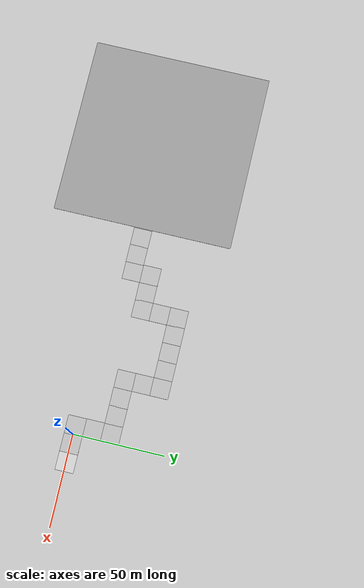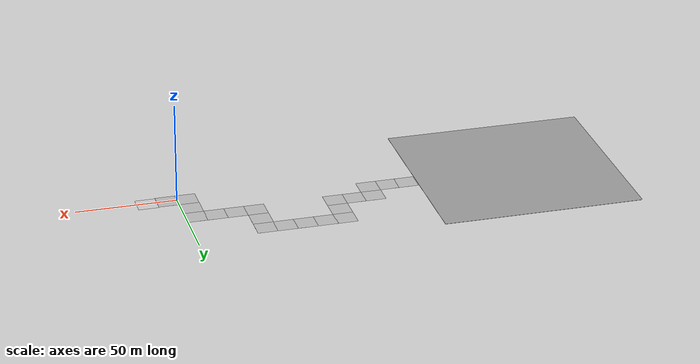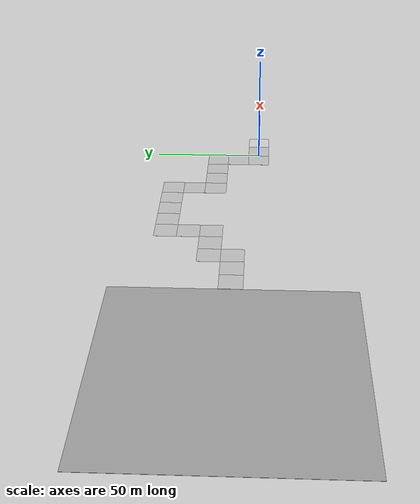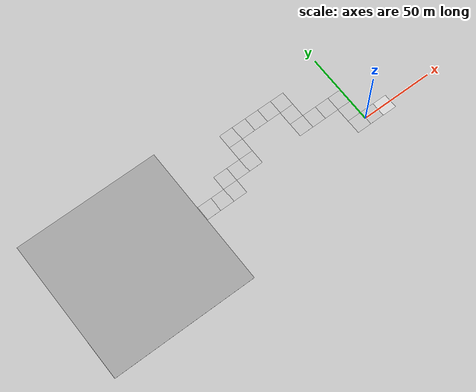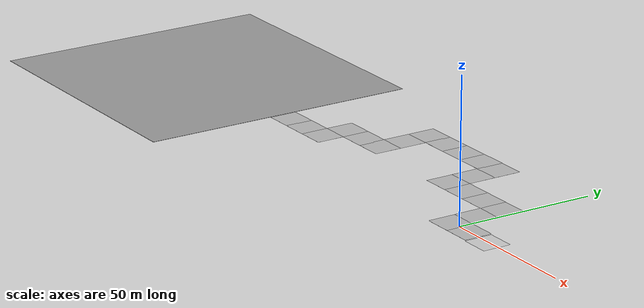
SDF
<sdf version="1.7">
 <world name="default">
  <light name="sun" type="directional">
   <pose>0 0 10 0 -0 0</pose>
   <diffuse>0.8 0.8 0.8 1</diffuse>
   <specular>0.2 0.2 0.2 1</specular>
   <attenuation>
    <range>1000</range>
    <constant>0.9</constant>
    <linear>0.01</linear>
    <quadratic>0.001</quadratic>
   </attenuation>
   <direction>-0.5 0.1 -0.9</direction>
   <spot><inner_angle>0</inner_angle><outer_angle>0</outer_angle><falloff>0</falloff></spot>
  </light>
  <gravity>0 0 -9.8</gravity>
  <magnetic_field>6e-06 2.3e-05 -4.2e-05</magnetic_field>
  <atmosphere type="adiabatic"/>
  <physics type="ode">
   <max_step_size>0.001</max_step_size>
   <real_time_factor>1</real_time_factor>
   <real_time_update_rate>1000</real_time_update_rate>
  </physics>
  <scene><ambient>0.4 0.4 0.4 1</ambient><background>0.7 0.7 0.7 1</background><shadows>1</shadows></scene>
  <spherical_coordinates>
   <surface_model>EARTH_WGS84</surface_model>
   <latitude_deg>0</latitude_deg>
   <longitude_deg>0</longitude_deg>
   <elevation>0</elevation>
   <heading_deg>0</heading_deg>
  </spherical_coordinates>
  <model name="road_straight">
   <static>1</static>
   <link name="link">
    <collision name="collision">
     <geometry><plane><normal>0 0 1</normal><size>10 10</size></plane></geometry>
     <surface><friction><ode><mu>75</mu><mu2>75</mu2></ode></friction></surface>
    </collision>
    <visual name="visual">
     <cast_shadows>0</cast_shadows>
     <geometry><plane><normal>0 0 1</normal><size>10 10</size></plane></geometry>
     <material>
      <script>
       <uri>model://road_straight/materials/scripts</uri>
       <uri>model://road_straight/materials/textures</uri>
       <name>road_straight/Image</name>
      </script>
     </material>
    </visual>
   </link>
   <pose>15.0087 0.000119 0 0 -0 0</pose>
  </model>
  <model name="road_straight_0">
   <static>1</static>
   <link name="link">
    <collision name="collision">
     <geometry><plane><normal>0 0 1</normal><size>10 10</size></plane></geometry>
     <surface><friction><ode><mu>75</mu><mu2>75</mu2></ode></friction></surface>
    </collision>
    <visual name="visual">
     <cast_shadows>0</cast_shadows>
     <geometry><plane><normal>0 0 1</normal><size>10 10</size></plane></geometry>
     <material>
      <script>
       <uri>model://road_straight/materials/scripts</uri>
       <uri>model://road_straight/materials/textures</uri>
       <name>road_straight/Image</name>
      </script>
     </material>
    </visual>
   </link>
   <pose>5.029 0.051187 0 0 -0 0</pose>
  </model>
  <model name="road_straight_1">
   <static>1</static>
   <link name="link">
    <collision name="collision">
     <geometry><plane><normal>0 0 1</normal><size>10 10</size></plane></geometry>
     <surface><friction><ode><mu>75</mu><mu2>75</mu2></ode></friction></surface>
    </collision>
    <visual name="visual">
     <cast_shadows>0</cast_shadows>
     <geometry><plane><normal>0 0 1</normal><size>10 10</size></plane></geometry>
     <material>
      <script>
       <uri>model://road_straight/materials/scripts</uri>
       <uri>model://road_straight/materials/textures</uri>
       <name>road_straight/Image</name>
      </script>
     </material>
    </visual>
   </link>
   <pose>-4.77848 0.046101 0 0 -0 0</pose>
  </model>
  <model name="road_straight_2">
   <static>1</static>
   <link name="link">
    <collision name="collision">
     <geometry><plane><normal>0 0 1</normal><size>10 10</size></plane></geometry>
     <surface><friction><ode><mu>75</mu><mu2>75</mu2></ode></friction></surface>
    </collision>
    <visual name="visual">
     <cast_shadows>0</cast_shadows>
     <geometry><plane><normal>0 0 1</normal><size>10 10</size></plane></geometry>
     <material>
      <script>
       <uri>model://road_straight/materials/scripts</uri>
       <uri>model://road_straight/materials/textures</uri>
       <name>road_straight/Image</name>
      </script>
     </material>
    </visual>
   </link>
   <pose>-4.85634 9.99883 0 0 -0 0</pose>
  </model>
  <model name="road_straight_3">
   <static>1</static>
   <link name="link">
    <collision name="collision">
     <geometry><plane><normal>0 0 1</normal><size>10 10</size></plane></geometry>
     <surface><friction><ode><mu>75</mu><mu2>75</mu2></ode></friction></surface>
    </collision>
    <visual name="visual">
     <cast_shadows>0</cast_shadows>
     <geometry><plane><normal>0 0 1</normal><size>10 10</size></plane></geometry>
     <material>
      <script>
       <uri>model://road_straight/materials/scripts</uri>
       <uri>model://road_straight/materials/textures</uri>
       <name>road_straight/Image</name>
      </script>
     </material>
    </visual>
   </link>
   <pose>-4.89203 19.8593 0 0 -0 0</pose>
  </model>
  <model name="road_straight_4">
   <static>1</static>
   <link name="link">
    <collision name="collision">
     <geometry><plane><normal>0 0 1</normal><size>10 10</size></plane></geometry>
     <surface><friction><ode><mu>75</mu><mu2>75</mu2></ode></friction></surface>
    </collision>
    <visual name="visual">
     <cast_shadows>0</cast_shadows>
     <geometry><plane><normal>0 0 1</normal><size>10 10</size></plane></geometry>
     <material>
      <script>
       <uri>model://road_straight/materials/scripts</uri>
       <uri>model://road_straight/materials/textures</uri>
       <name>road_straight/Image</name>
      </script>
     </material>
    </visual>
   </link>
   <pose>-14.7236 19.8934 0 0 -0 0</pose>
  </model>
  <model name="road_straight_5">
   <static>1</static>
   <link name="link">
    <collision name="collision">
     <geometry><plane><normal>0 0 1</normal><size>10 10</size></plane></geometry>
     <surface><friction><ode><mu>75</mu><mu2>75</mu2></ode></friction></surface>
    </collision>
    <visual name="visual">
     <cast_shadows>0</cast_shadows>
     <geometry><plane><normal>0 0 1</normal><size>10 10</size></plane></geometry>
     <material>
      <script>
       <uri>model://road_straight/materials/scripts</uri>
       <uri>model://road_straight/materials/textures</uri>
       <name>road_straight/Image</name>
      </script>
     </material>
    </visual>
   </link>
   <pose>-24.5491 19.9079 0 0 -0 0</pose>
  </model>
  <model name="road_straight_6">
   <static>1</static>
   <link name="link">
    <collision name="collision">
     <geometry><plane><normal>0 0 1</normal><size>10 10</size></plane></geometry>
     <surface><friction><ode><mu>75</mu><mu2>75</mu2></ode></friction></surface>
    </collision>
    <visual name="visual">
     <cast_shadows>0</cast_shadows>
     <geometry><plane><normal>0 0 1</normal><size>10 10</size></plane></geometry>
     <material>
      <script>
       <uri>model://road_straight/materials/scripts</uri>
       <uri>model://road_straight/materials/textures</uri>
       <name>road_straight/Image</name>
      </script>
     </material>
    </visual>
   </link>
   <pose>-34.5291 19.9343 0 0 -0 0</pose>
  </model>
  <model name="road_straight_7">
   <static>1</static>
   <link name="link">
    <collision name="collision">
     <geometry><plane><normal>0 0 1</normal><size>10 10</size></plane></geometry>
     <surface><friction><ode><mu>75</mu><mu2>75</mu2></ode></friction></surface>
    </collision>
    <visual name="visual">
     <cast_shadows>0</cast_shadows>
     <geometry><plane><normal>0 0 1</normal><size>10 10</size></plane></geometry>
     <material>
      <script>
       <uri>model://road_straight/materials/scripts</uri>
       <uri>model://road_straight/materials/textures</uri>
       <name>road_straight/Image</name>
      </script>
     </material>
    </visual>
   </link>
   <pose>-34.5651 29.8499 0 0 -0 0</pose>
  </model>
  <model name="road_straight_8">
   <static>1</static>
   <link name="link">
    <collision name="collision">
     <geometry><plane><normal>0 0 1</normal><size>10 10</size></plane></geometry>
     <surface><friction><ode><mu>75</mu><mu2>75</mu2></ode></friction></surface>
    </collision>
    <visual name="visual">
     <cast_shadows>0</cast_shadows>
     <geometry><plane><normal>0 0 1</normal><size>10 10</size></plane></geometry>
     <material>
      <script>
       <uri>model://road_straight/materials/scripts</uri>
       <uri>model://road_straight/materials/textures</uri>
       <name>road_straight/Image</name>
      </script>
     </material>
    </visual>
   </link>
   <pose>-34.5584 39.7621 0 0 -0 0</pose>
  </model>
  <model name="road_straight_9">
   <static>1</static>
   <link name="link">
    <collision name="collision">
     <geometry><plane><normal>0 0 1</normal><size>10 10</size></plane></geometry>
     <surface><friction><ode><mu>75</mu><mu2>75</mu2></ode></friction></surface>
    </collision>
    <visual name="visual">
     <cast_shadows>0</cast_shadows>
     <geometry><plane><normal>0 0 1</normal><size>10 10</size></plane></geometry>
     <material>
      <script>
       <uri>model://road_straight/materials/scripts</uri>
       <uri>model://road_straight/materials/textures</uri>
       <name>road_straight/Image</name>
      </script>
     </material>
    </visual>
   </link>
   <pose>-44.3559 39.8056 0 0 -0 0</pose>
  </model>
  <model name="road_straight_10">
   <static>1</static>
   <link name="link">
    <collision name="collision">
     <geometry><plane><normal>0 0 1</normal><size>10 10</size></plane></geometry>
     <surface><friction><ode><mu>75</mu><mu2>75</mu2></ode></friction></surface>
    </collision>
    <visual name="visual">
     <cast_shadows>0</cast_shadows>
     <geometry><plane><normal>0 0 1</normal><size>10 10</size></plane></geometry>
     <material>
      <script>
       <uri>model://road_straight/materials/scripts</uri>
       <uri>model://road_straight/materials/textures</uri>
       <name>road_straight/Image</name>
      </script>
     </material>
    </visual>
   </link>
   <pose>-54.2084 39.8023 0 0 -0 0</pose>
  </model>
  <model name="road_straight_11">
   <static>1</static>
   <link name="link">
    <collision name="collision">
     <geometry><plane><normal>0 0 1</normal><size>10 10</size></plane></geometry>
     <surface><friction><ode><mu>75</mu><mu2>75</mu2></ode></friction></surface>
    </collision>
    <visual name="visual">
     <cast_shadows>0</cast_shadows>
     <geometry><plane><normal>0 0 1</normal><size>10 10</size></plane></geometry>
     <material>
      <script>
       <uri>model://road_straight/materials/scripts</uri>
       <uri>model://road_straight/materials/textures</uri>
       <name>road_straight/Image</name>
      </script>
     </material>
    </visual>
   </link>
   <pose>-64.2022 39.7922 0 0 -0 0</pose>
  </model>
  <model name="road_straight_12">
   <static>1</static>
   <link name="link">
    <collision name="collision">
     <geometry><plane><normal>0 0 1</normal><size>10 10</size></plane></geometry>
     <surface><friction><ode><mu>75</mu><mu2>75</mu2></ode></friction></surface>
    </collision>
    <visual name="visual">
     <cast_shadows>0</cast_shadows>
     <geometry><plane><normal>0 0 1</normal><size>10 10</size></plane></geometry>
     <material>
      <script>
       <uri>model://road_straight/materials/scripts</uri>
       <uri>model://road_straight/materials/textures</uri>
       <name>road_straight/Image</name>
      </script>
     </material>
    </visual>
   </link>
   <pose>-73.9142 39.8088 0 0 -0 0</pose>
  </model>
  <model name="road_straight_13">
   <static>1</static>
   <link name="link">
    <collision name="collision">
     <geometry><plane><normal>0 0 1</normal><size>10 10</size></plane></geometry>
     <surface><friction><ode><mu>75</mu><mu2>75</mu2></ode></friction></surface>
    </collision>
    <visual name="visual">
     <cast_shadows>0</cast_shadows>
     <geometry><plane><normal>0 0 1</normal><size>10 10</size></plane></geometry>
     <material>
      <script>
       <uri>model://road_straight/materials/scripts</uri>
       <uri>model://road_straight/materials/textures</uri>
       <name>road_straight/Image</name>
      </script>
     </material>
    </visual>
   </link>
   <pose>-73.9074 29.8525 0 0 -0 0</pose>
  </model>
  <model name="road_straight_14">
   <static>1</static>
   <link name="link">
    <collision name="collision">
     <geometry><plane><normal>0 0 1</normal><size>10 10</size></plane></geometry>
     <surface><friction><ode><mu>75</mu><mu2>75</mu2></ode></friction></surface>
    </collision>
    <visual name="visual">
     <cast_shadows>0</cast_shadows>
     <geometry><plane><normal>0 0 1</normal><size>10 10</size></plane></geometry>
     <material>
      <script>
       <uri>model://road_straight/materials/scripts</uri>
       <uri>model://road_straight/materials/textures</uri>
       <name>road_straight/Image</name>
      </script>
     </material>
    </visual>
   </link>
   <pose>-73.9005 19.911 0 0 -0 0</pose>
  </model>
  <model name="road_straight_15">
   <static>1</static>
   <link name="link">
    <collision name="collision">
     <geometry><plane><normal>0 0 1</normal><size>10 10</size></plane></geometry>
     <surface><friction><ode><mu>75</mu><mu2>75</mu2></ode></friction></surface>
    </collision>
    <visual name="visual">
     <cast_shadows>0</cast_shadows>
     <geometry><plane><normal>0 0 1</normal><size>10 10</size></plane></geometry>
     <material>
      <script>
       <uri>model://road_straight/materials/scripts</uri>
       <uri>model://road_straight/materials/textures</uri>
       <name>road_straight/Image</name>
      </script>
     </material>
    </visual>
   </link>
   <pose>-83.5102 19.9155 0 0 -0 0</pose>
  </model>
  <model name="road_straight_16">
   <static>1</static>
   <link name="link">
    <collision name="collision">
     <geometry><plane><normal>0 0 1</normal><size>10 10</size></plane></geometry>
     <surface><friction><ode><mu>75</mu><mu2>75</mu2></ode></friction></surface>
    </collision>
    <visual name="visual">
     <cast_shadows>0</cast_shadows>
     <geometry><plane><normal>0 0 1</normal><size>10 10</size></plane></geometry>
     <material>
      <script>
       <uri>model://road_straight/materials/scripts</uri>
       <uri>model://road_straight/materials/textures</uri>
       <name>road_straight/Image</name>
      </script>
     </material>
    </visual>
   </link>
   <pose>-93.4257 19.9471 0 0 -0 0</pose>
  </model>
  <model name="road_straight_17">
   <static>1</static>
   <link name="link">
    <collision name="collision">
     <geometry><plane><normal>0 0 1</normal><size>10 10</size></plane></geometry>
     <surface><friction><ode><mu>75</mu><mu2>75</mu2></ode></friction></surface>
    </collision>
    <visual name="visual">
     <cast_shadows>0</cast_shadows>
     <geometry><plane><normal>0 0 1</normal><size>10 10</size></plane></geometry>
     <material>
      <script>
       <uri>model://road_straight/materials/scripts</uri>
       <uri>model://road_straight/materials/textures</uri>
       <name>road_straight/Image</name>
      </script>
     </material>
    </visual>
   </link>
   <pose>-93.412 9.99174 0 0 -0 0</pose>
  </model>
  <model name="road_straight_18">
   <static>1</static>
   <link name="link">
    <collision name="collision">
     <geometry><plane><normal>0 0 1</normal><size>10 10</size></plane></geometry>
     <surface><friction><ode><mu>75</mu><mu2>75</mu2></ode></friction></surface>
    </collision>
    <visual name="visual">
     <cast_shadows>0</cast_shadows>
     <geometry><plane><normal>0 0 1</normal><size>10 10</size></plane></geometry>
     <material>
      <script>
       <uri>model://road_straight/materials/scripts</uri>
       <uri>model://road_straight/materials/textures</uri>
       <name>road_straight/Image</name>
      </script>
     </material>
    </visual>
   </link>
   <pose>-103.089 9.95873 0 0 -0 0</pose>
  </model>
  <model name="road_straight_19">
   <static>1</static>
   <link name="link">
    <collision name="collision">
     <geometry><plane><normal>0 0 1</normal><size>10 10</size></plane></geometry>
     <surface><friction><ode><mu>75</mu><mu2>75</mu2></ode></friction></surface>
    </collision>
    <visual name="visual">
     <cast_shadows>0</cast_shadows>
     <geometry><plane><normal>0 0 1</normal><size>10 10</size></plane></geometry>
     <material>
      <script>
       <uri>model://road_straight/materials/scripts</uri>
       <uri>model://road_straight/materials/textures</uri>
       <name>road_straight/Image</name>
      </script>
     </material>
    </visual>
   </link>
   <pose>-112.898 9.96291 0 0 -0 0</pose>
  </model>
  <model name="ground_plane">
   <static>1</static>
   <link name="link">
    <collision name="collision">
     <geometry><plane><normal>0 0 1</normal><size>100 100</size></plane></geometry>
     <surface><friction><ode><mu>100</mu><mu2>50</mu2></ode></friction></surface>
    </collision>
    <visual name="visual">
     <cast_shadows>0</cast_shadows>
     <geometry><plane><normal>0 0 1</normal><size>100 100</size></plane></geometry>
     <material>
      <script><uri>file://media/materials/scripts/gazebo.material</uri><name>Gazebo/Grey</name></script>
     </material>
    </visual>
   </link>
   <pose>69.6791 -0.571565 0 0 -0 0</pose>
  </model>
  <model name="ground_plane_0">
   <static>1</static>
   <link name="link">
    <collision name="collision">
     <geometry><plane><normal>0 0 1</normal><size>100 100</size></plane></geometry>
     <surface><friction><ode><mu>100</mu><mu2>50</mu2></ode></friction></surface>
    </collision>
    <visual name="visual">
     <cast_shadows>0</cast_shadows>
     <geometry><plane><normal>0 0 1</normal><size>100 100</size></plane></geometry>
     <material>
      <script><uri>file://media/materials/scripts/gazebo.material</uri><name>Gazebo/Grey</name></script>
     </material>
    </visual>
   </link>
   <pose>-168.164 9.07012 0 0 -0 0</pose>
  </model>
 </world>
</sdf>
